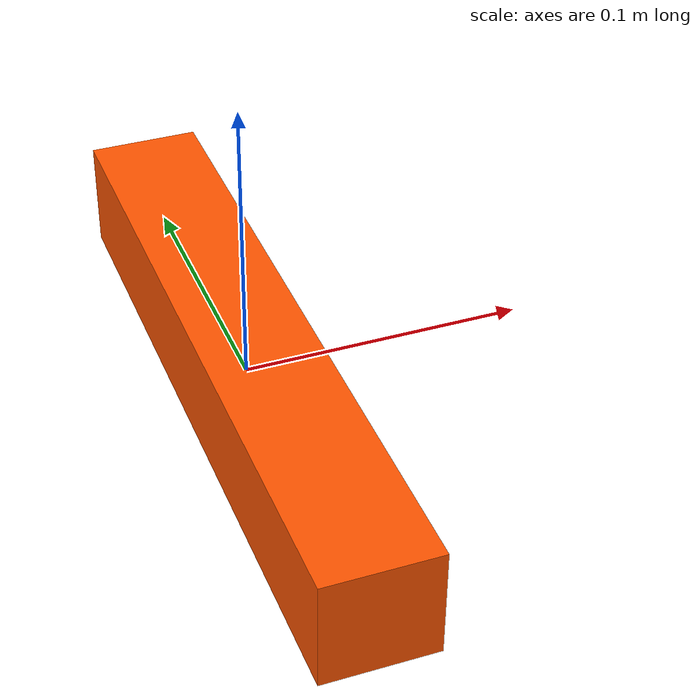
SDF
<?xml version="1.0" ?>
<sdf version="1.7">
  <model name="carrot">
    <link name="link">
      <!-- pitch = π/2 lays the carrot on its side (long axis along world X) -->
      <pose>0 0 0 0 1.5708 0</pose>

      <inertial>
        <mass>0.12</mass>
        <inertia>
          <ixx>0.000650</ixx>
          <iyy>0.000008</iyy>
          <izz>0.000650</izz>
        </inertia>
      </inertial>

      <collision name="collision">
        <geometry>
          <box><size>0.04 0.25 0.04</size></box>
        </geometry>
        <surface>
          <friction><ode><mu>0.8</mu><mu2>0.8</mu2></ode></friction>
        </surface>
      </collision>

      <visual name="visual">
        <geometry>
          <box><size>0.04 0.25 0.04</size></box>
        </geometry>
        <material>
          <ambient>1.0 0.333 0.0 1</ambient>
          <diffuse>1.0 0.333 0.0 1</diffuse>
        </material>
      </visual>

    </link>
  </model>
</sdf>
